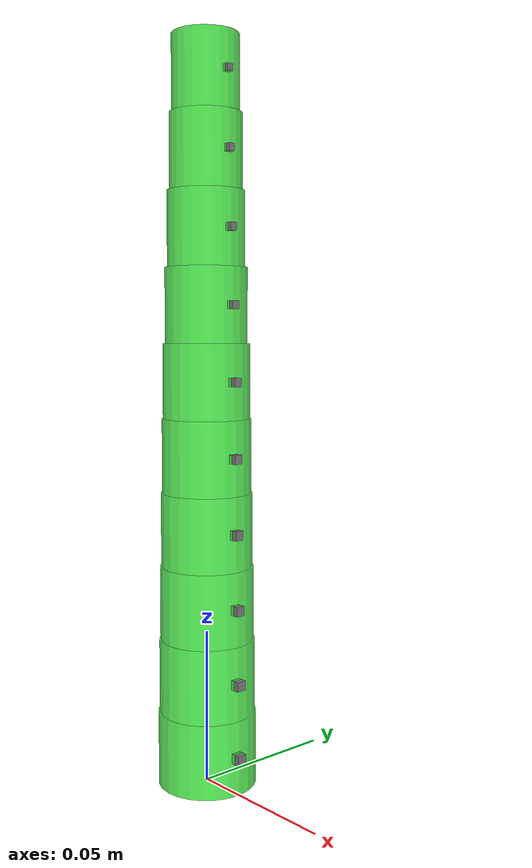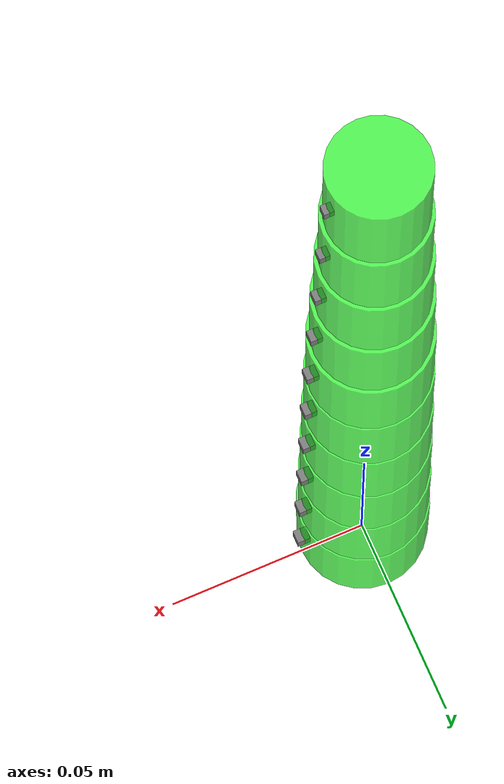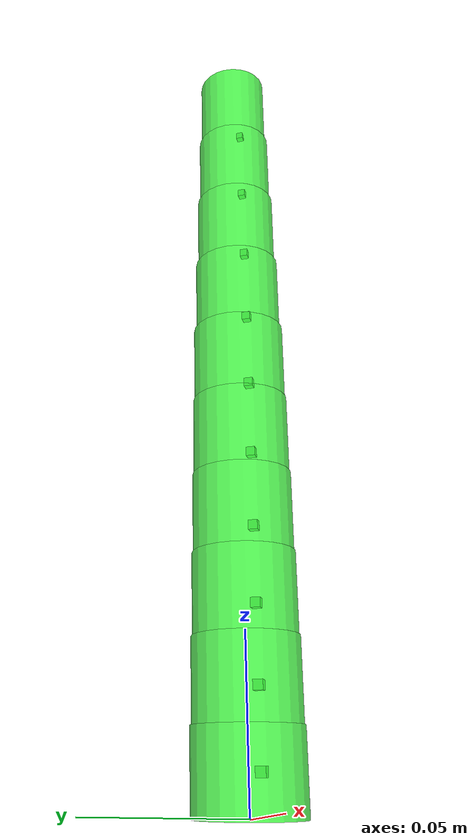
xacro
<?xml version='1.0'?>
<!-- This file has been generated automatically from SoftTrunkModel::generateRobotURDF(), do not edit by hand -->
<robot xmlns:xacro='http://www.ros.org/wiki/xacro' name='2segment'>
<xacro:include filename='macro_definitions.urdf.xacro' />
<xacro:empty_link name='base_link'/>
<xacro:PCC id='seg0_sec0' parent='base_link' child='seg0_sec0-1_connect' length='0.024' mass='0.2' radius='0.016'/>
<xacro:empty_link name='seg0_sec0-1_connect'/>
<xacro:PCC id='seg0_sec1' parent='seg0_sec0-1_connect' child='seg0_sec1-2_connect' length='0.024' mass='0.2' radius='0.0156'/>
<xacro:empty_link name='seg0_sec1-2_connect'/>
<xacro:PCC id='seg0_sec2' parent='seg0_sec1-2_connect' child='seg0_sec2-3_connect' length='0.024' mass='0.2' radius='0.0152'/>
<xacro:empty_link name='seg0_sec2-3_connect'/>
<xacro:PCC id='seg0_sec3' parent='seg0_sec2-3_connect' child='seg0_sec3-4_connect' length='0.024' mass='0.2' radius='0.014800000000000002'/>
<xacro:empty_link name='seg0_sec3-4_connect'/>
<xacro:PCC id='seg0_sec4' parent='seg0_sec3-4_connect' child='seg0-1_connect' length='0.024' mass='0.2' radius='0.014400000000000001'/>
<xacro:empty_link name='seg0-1_connect'/>
<xacro:PCC id='seg1_sec0' parent='seg0-1_connect' child='seg1_sec0-1_connect' length='0.024' mass='0.2' radius='0.014000000000000002'/>
<xacro:empty_link name='seg1_sec0-1_connect'/>
<xacro:PCC id='seg1_sec1' parent='seg1_sec0-1_connect' child='seg1_sec1-2_connect' length='0.024' mass='0.2' radius='0.0132'/>
<xacro:empty_link name='seg1_sec1-2_connect'/>
<xacro:PCC id='seg1_sec2' parent='seg1_sec1-2_connect' child='seg1_sec2-3_connect' length='0.024' mass='0.2' radius='0.0124'/>
<xacro:empty_link name='seg1_sec2-3_connect'/>
<xacro:PCC id='seg1_sec3' parent='seg1_sec2-3_connect' child='seg1_sec3-4_connect' length='0.024' mass='0.2' radius='0.0116'/>
<xacro:empty_link name='seg1_sec3-4_connect'/>
<xacro:PCC id='seg1_sec4' parent='seg1_sec3-4_connect' child='seg1-2_connect' length='0.024' mass='0.2' radius='0.0108'/>
<xacro:empty_link name='seg1-2_connect'/>
</robot>

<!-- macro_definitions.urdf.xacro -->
<!--
this file defines the xacro macros that can be used to create PCC augmented models
rigid model as described in IROS2021 paper (toshimitsu et al., 2021)
-->

<robot xmlns:xacro="http://www.ros.org/wiki/xacro" name="robot">
  <material name="green">
    <color rgba="0.2 1 0.2 0.8"/>
  </material>
  <material name="white">
    <color rgba="0.5 0.5 0.5 1"/>
  </material>

  <xacro:property name="PI" value="3.1415" />
  <xacro:macro name="ball-joint" params="id parent child">
    <!--creates a (pseudo) ball joint, called from the PCC macro..-->
    <joint name="${id}-ball-joint_x_joint" type="revolute">
      <parent link="${parent}"/>
      <child link="${id}-ball-joint_link_0"/>
      <axis xyz="1 0 0"/>
      <limit lower="${-PI/2}" upper="${PI/2}" effort="1000" velocity="1000"/>
    </joint>
    <link name="${id}-ball-joint_link_0">
      <xacro:default_inertial/>
    </link>
    <joint name="${id}-ball-joint_y_joint" type="revolute">
      <parent link="${id}-ball-joint_link_0"/>
      <child link="${id}-ball-joint_link_1"/>
      <axis xyz="0 1 0"/>
      <limit lower="${-PI/2}" upper="${PI/2}" effort="1000" velocity="1000"/>
    </joint>
    <link name="${id}-ball-joint_link_1">
      <xacro:default_inertial/>
   </link>
    <joint name="${id}-ball-joint_z_joint" type="revolute">
      <parent link="${id}-ball-joint_link_1"/>
      <child link="${child}"/>
      <axis xyz="0 0 1"/>
      <limit lower="${-PI/2}" upper="${PI/2}" effort="1000" velocity="1000"/>
    </joint>
  </xacro:macro>

  <xacro:macro name="default_inertial">
    <!--since the RBDL needs a inertial info for each link, just assign a really small value to links where we don't have to consider inertia.-->
    <inertial>
      <mass value="0.00001"/>
      <inertia ixx="0.00001" ixy="0.0000" ixz="0.0000" iyy="0.00001" iyz="0.0000" izz="0.00001"/>
    </inertial>
  </xacro:macro>

  <xacro:macro name="PCC" params="id parent child length mass radius:=0.02">
    <!--creates a PCC piece-->
    <xacro:ball-joint id="${id}-ball" parent="${parent}" child="${id}-a"/>
    <link name="${id}-a">
      <xacro:default_inertial/>
    </link>
    <joint name="${id}-a-b_joint" type="prismatic">
      <parent link="${id}-a"/>
      <child link="${id}-b"/>
      <axis xyz="0 0 -1"/>
      <origin xyz="0 0 ${length/2}"/>
      <limit lower="0" upper="${length/2}" effort="1000" velocity="1000"/>
    </joint>
    <link name="${id}-b">
      <xacro:default_inertial/>
    </link>
    <!-- These links branch out into the XY plane. The mass can move around the plane to match the CoM of the actual PCC model -->
    <link name="${id}-branch-a">
      <xacro:default_inertial/>
    </link>
    <link name="${id}-branch-b">
      <visual>
        <geometry>
          <cylinder length="${length}" radius="${radius}"/>
        </geometry>
        <material name="green"/>
      </visual>
      <visual>
        <!-- this marks the +x direction (i.e. the direction where the first chamber should be) -->
        <geometry>
          <box size="${radius/5.} ${radius/5.} ${radius/5.}"/>
        </geometry>
        <origin xyz="${radius} 0 0"/>
        <material name="white"/>
      </visual>
      <inertial>
        <mass value="${mass}"/>
        <!-- moment of inertia for a cylinder with radius and length -->
        <inertia ixx="${mass * (3*radius**2 + length**2) / 12.}" ixy="0.000" ixz="0.000" iyy="${mass * (3*radius**2 + length**2) / 12.}" iyz="0.000" izz="${mass * radius*radius / 2.}"/>
      </inertial>
    </link>

    <!-- the next two joints are prismatic joints to move the mass on a plane to match CoM position -->
    <joint name="${id}-b-branch-a_joint" type="prismatic">
      <parent link="${id}-b"/>
      <child link="${id}-branch-a"/>
      <axis xyz="1 0 0"/>
      <limit lower="-1" upper="1" effort="1000" velocity="1000"/>
    </joint>
    <joint name="${id}-branch-a-branch-b_joint" type="prismatic">
      <parent link="${id}-branch-a"/>
      <child link="${id}-branch-b"/>
      <axis xyz="0 1 0"/>
      <limit lower="-1" upper="1" effort="1000" velocity="1000"/>
    </joint>

    <joint name="${id}-b-${child}_joint" type="prismatic">
      <parent link="${id}-b"/>
      <child link="${child}"/>
      <axis xyz="0 0 -1"/>
      <origin xyz="0 0 ${length/2}"/>
      <limit lower="0" upper="${length/2}" effort="1000" velocity="1000"/>
    </joint>
  </xacro:macro>

  <xacro:macro name="empty_link" params="name">
    <link name="${name}">
      <xacro:default_inertial/>
    </link>
  </xacro:macro>

  <xacro:macro name="rigid_rotation" params="rotX rotY rotZ parent child">
    <joint name="${parent}_${child}_joint" type="fixed">
      <parent link="${parent}"/>
      <child link="${child}"/>
      <origin rpy="${rotX} ${rotY} ${rotZ}"/>
    </joint>
  </xacro:macro>
</robot>
